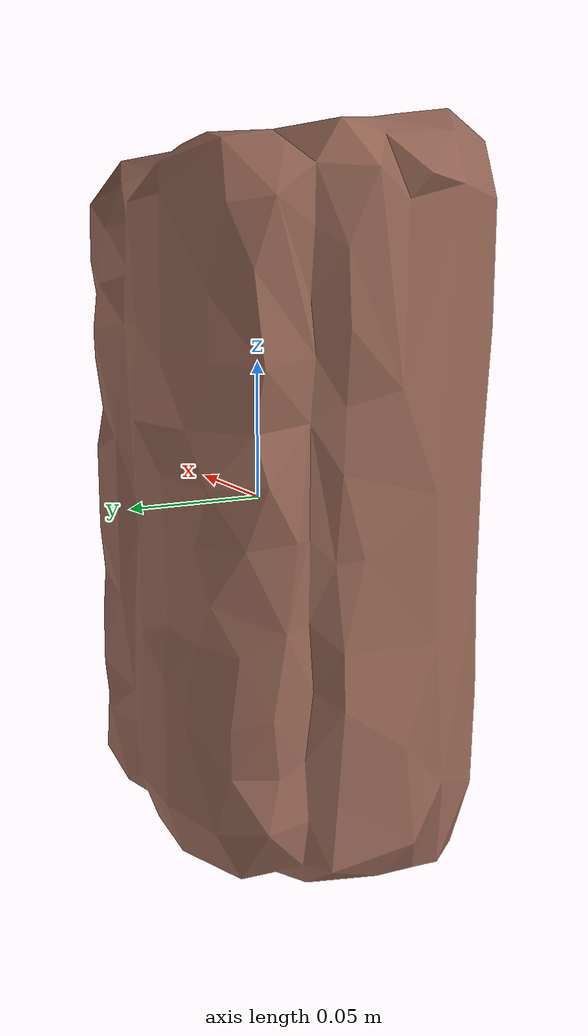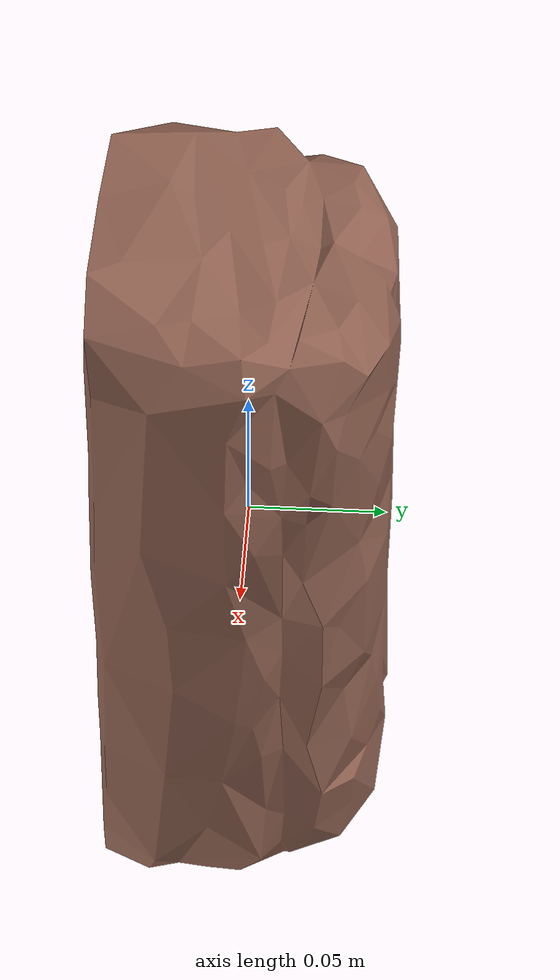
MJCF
<mujoco model="Bread_9">
  <compiler autolimits="true" boundmass="0.01" angle="radian"/>
  <default>
    <default class="/">
      <default class="__VISUAL_MJT__">
        <geom contype="0" conaffinity="0" group="0"/>
      </default>
      <default class="__STRUCTURAL_MJT__">
        <geom contype="8" conaffinity="15" group="4" friction="0.90000000000000002 0.90000000000000002 0.001" solref="0.025000000000000001 1" solimp="0.998 0.998 0.001"/>
      </default>
      <default class="__DYNAMIC_MJT__">
        <geom contype="1" conaffinity="15" group="4" friction="0.90000000000000002 0.90000000000000002 0.001" solref="0.025000000000000001 1" solimp="0.998 0.998 0.001"/>
      </default>
    </default>
  </default>
  <asset>
    <texture name="Bread4_Mat2" type="2d" file="Bread4_AlbedoTransparency.png"/>
    <material name="material_Bread4_Mat2" class="/" texture="Bread4_Mat2" specular="0.5" shininess="0.5" rgba="0.76470590000000005 0.54243390000000002 0.47794120000000001 1"/>
    <mesh name="Bread_9_bread4_b_mesh" class="/" file="Bread_9_bread4_b_mesh/Bread_9_bread4_b_mesh.obj" scale="1 1 1"/>
  </asset>
  <worldbody>
    <body name="Bread_9">
      <joint name="Bread_9_free" class="/" type="free" pos="0 0 0" axis="0 0 1" stiffness="0" range="0 0" armature="0" damping="0.10000000000000001" frictionloss="0"/>
      <body name="Bread_9_bread4_b_mesh" pos="-0 0 0" quat="1 0 0 0">
        <geom name="Bread_9_bread4_b_mesh" class="__VISUAL_MJT__" type="mesh" material="material_Bread4_Mat2" shellinertia="false" mesh="Bread_9_bread4_b_mesh"/>
        <geom name="Bread_9_PrimitiveCollider_0" class="__DYNAMIC_MJT__" type="box" size="0.078737527132034302 0.053320698440074921 0.13069655001163483" rgba="0 1 0 1" pos="-0 0 0" quat="1 0 0 0"/>
      </body>
    </body>
  </worldbody>
</mujoco>
